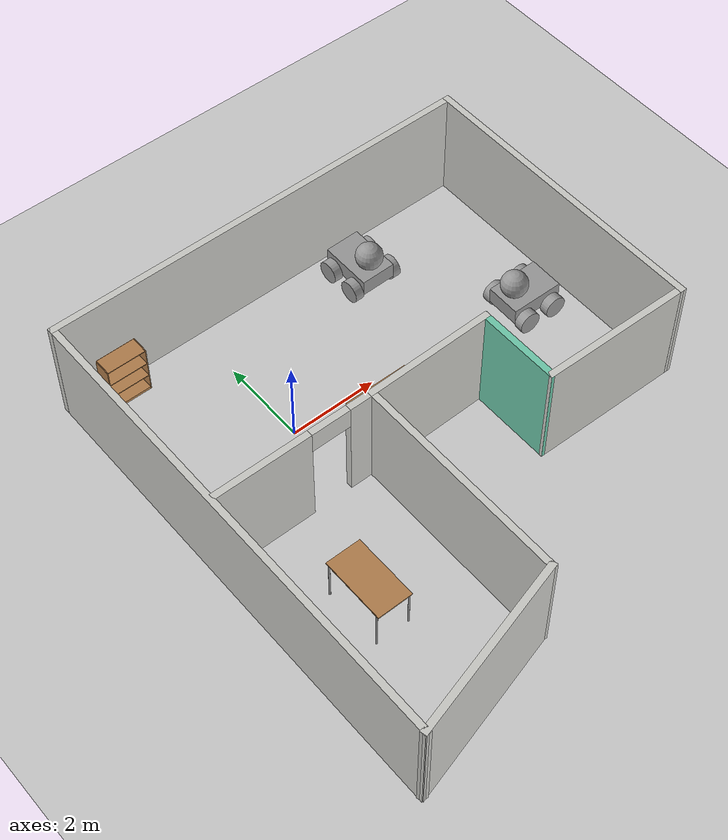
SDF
<sdf version="1.6">
 <world name="default">
  <plugin name="welcome" filename="../build/libwelcome.so"/>
  <light name="sun" type="directional">
   <pose>0 0 10 0 -0 0</pose>
   <diffuse>0.8 0.8 0.8 1</diffuse>
   <specular>0.2 0.2 0.2 1</specular>
   <attenuation>
    <range>1000</range>
    <constant>0.9</constant>
    <linear>0.01</linear>
    <quadratic>0.001</quadratic>
   </attenuation>
   <direction>-0.5 0.1 -0.9</direction>
  </light>
  <model name="ground_plane">
   <static>1</static>
   <link name="link">
    <collision name="collision">
     <geometry><plane><normal>0 0 1</normal><size>100 100</size></plane></geometry>
     <surface>
      <contact><collide_bitmask>65535</collide_bitmask></contact>
      <friction><ode><mu>100</mu><mu2>50</mu2></ode></friction>
     </surface>
    </collision>
    <visual name="visual">
     <cast_shadows>0</cast_shadows>
     <geometry><plane><normal>0 0 1</normal><size>100 100</size></plane></geometry>
     <material>
      <script><uri>file://media/materials/scripts/gazebo.material</uri><name>Gazebo/Grey</name></script>
     </material>
    </visual>
   </link>
  </model>
  <gravity>0 0 -9.8</gravity>
  <magnetic_field>6e-06 2.3e-05 -4.2e-05</magnetic_field>
  <atmosphere type="adiabatic"/>
  <physics name="default_physics" default="0" type="ode">
   <max_step_size>0.001</max_step_size>
   <real_time_factor>1</real_time_factor>
   <real_time_update_rate>1000</real_time_update_rate>
  </physics>
  <scene><ambient>0.4 0.4 0.4 1</ambient><background>0.7 0.7 0.7 1</background><shadows>1</shadows></scene>
  <audio><device>default</device></audio>
  <spherical_coordinates>
   <surface_model>EARTH_WGS84</surface_model>
   <latitude_deg>0</latitude_deg>
   <longitude_deg>0</longitude_deg>
   <elevation>0</elevation>
   <heading_deg>0</heading_deg>
  </spherical_coordinates>
  <model name="model">
   <pose>1.84998 -2.09742 0 0 -0 0</pose>
   <link name="Wall_1">
    <collision name="Wall_1_Collision">
     <geometry><box><size>11 0.15 2.5</size></box></geometry>
     <pose>0 0 1.25 0 -0 0</pose>
    </collision>
    <visual name="Wall_1_Visual">
     <pose>0 0 1.25 0 -0 0</pose>
     <geometry><box><size>11 0.15 2.5</size></box></geometry>
     <material>
      <script><uri>file://media/materials/scripts/gazebo.material</uri><name>Gazebo/CeilingTiled</name></script>
      <ambient>0.435294 0.796078 0.67451 1</ambient>
     </material>
     <meta><layer>0</layer></meta>
    </visual>
    <pose>-4.94886 0.008277 0 0 -0 -1.5708</pose>
   </link>
   <link name="Wall_11">
    <collision name="Wall_11_Collision">
     <geometry><box><size>7 0.15 2.5</size></box></geometry>
     <pose>0 0 1.25 0 -0 0</pose>
    </collision>
    <visual name="Wall_11_Visual">
     <pose>0 0 1.25 0 -0 0</pose>
     <geometry><box><size>7 0.15 2.5</size></box></geometry>
     <material>
      <script><uri>file://media/materials/scripts/gazebo.material</uri><name>Gazebo/CeilingTiled</name></script>
      <ambient>0.435294 0.796078 0.67451 1</ambient>
     </material>
     <meta><layer>0</layer></meta>
    </visual>
    <pose>4.96467 2.00864 0 0 -0 -1.5708</pose>
   </link>
   <link name="Wall_13">
    <collision name="Wall_13_Collision">
     <geometry><box><size>2 0.15 2.5</size></box></geometry>
     <pose>0 0 1.25 0 -0 0</pose>
    </collision>
    <visual name="Wall_13_Visual">
     <pose>0 0 1.25 0 -0 0</pose>
     <geometry><box><size>2 0.15 2.5</size></box></geometry>
     <material>
      <script><uri>file://media/materials/scripts/gazebo.material</uri><name>Gazebo/Grey</name></script>
      <ambient>0.435294 0.796078 0.67451 1</ambient>
     </material>
     <meta><layer>0</layer></meta>
    </visual>
    <pose>1.61467 -0.44136 0 0 -0 -1.5708</pose>
   </link>
   <link name="Wall_15">
    <collision name="Wall_15_Collision">
     <geometry><box><size>3.50037 0.15 2.5</size></box></geometry>
     <pose>0 0 1.25 0 -0 0</pose>
    </collision>
    <visual name="Wall_15_Visual">
     <pose>0 0 1.25 0 -0 0</pose>
     <geometry><box><size>3.50037 0.15 2.5</size></box></geometry>
     <material>
      <script><uri>file://media/materials/scripts/gazebo.material</uri><name>Gazebo/CeilingTiled</name></script>
      <ambient>0.435294 0.796078 0.67451 1</ambient>
     </material>
     <meta><layer>0</layer></meta>
    </visual>
    <pose>3.28967 -1.39136 0 0 -0 -0.014924</pose>
   </link>
   <link name="Wall_17">
    <pose>-3.03509 0.433277 0 0 -0 -3.14159</pose>
    <visual name="Wall_17_Visual_0">
     <pose>-1.55111 0 1.25 0 -0 0</pose>
     <geometry><box><size>0.647788 0.15 2.5</size></box></geometry>
     <material>
      <script><uri>file://media/materials/scripts/gazebo.material</uri><name>Gazebo/CeilingTiled</name></script>
      <ambient>0.435294 0.796078 0.67451 1</ambient>
     </material>
     <meta><layer>0</layer></meta>
    </visual>
    <collision name="Wall_17_Collision_0">
     <geometry><box><size>0.647788 0.15 2.5</size></box></geometry>
     <pose>-1.55111 0 1.25 0 -0 0</pose>
    </collision>
    <visual name="Wall_17_Visual_1">
     <pose>0.773894 0 1.25 0 -0 0</pose>
     <geometry><box><size>2.20221 0.15 2.5</size></box></geometry>
     <material>
      <script><uri>file://media/materials/scripts/gazebo.material</uri><name>Gazebo/CeilingTiled</name></script>
      <ambient>0.435294 0.796078 0.67451 1</ambient>
     </material>
     <meta><layer>0</layer></meta>
    </visual>
    <collision name="Wall_17_Collision_1">
     <geometry><box><size>2.20221 0.15 2.5</size></box></geometry>
     <pose>0.773894 0 1.25 0 -0 0</pose>
    </collision>
    <visual name="Wall_17_Visual_2">
     <pose>-0.777212 0 2.25 0 -0 0</pose>
     <geometry><box><size>0.9 0.15 0.5</size></box></geometry>
     <material>
      <script><uri>file://media/materials/scripts/gazebo.material</uri><name>Gazebo/CeilingTiled</name></script>
      <ambient>0.435294 0.796078 0.67451 1</ambient>
     </material>
     <meta><layer>0</layer></meta>
    </visual>
    <collision name="Wall_17_Collision_2">
     <geometry><box><size>0.9 0.15 0.5</size></box></geometry>
     <pose>-0.777212 0 2.25 0 -0 0</pose>
    </collision>
   </link>
   <link name="Wall_2">
    <collision name="Wall_2_Collision">
     <geometry><box><size>3.99627 0.15 2.5</size></box></geometry>
     <pose>0 0 1.25 0 -0 0</pose>
    </collision>
    <visual name="Wall_2_Visual">
     <pose>0 0 1.25 0 -0 0</pose>
     <geometry><box><size>3.99627 0.15 2.5</size></box></geometry>
     <material>
      <script><uri>file://media/materials/scripts/gazebo.material</uri><name>Gazebo/CeilingTiled</name></script>
      <ambient>0.435294 0.796078 0.67451 1</ambient>
     </material>
     <meta><layer>0</layer></meta>
    </visual>
    <pose>-3.09186 -4.91672 0 0 -0 0.263014</pose>
   </link>
   <link name="Wall_3">
    <collision name="Wall_3_Collision">
     <geometry><box><size>5 0.15 2.5</size></box></geometry>
     <pose>0 0 1.25 0 -0 0</pose>
    </collision>
    <visual name="Wall_3_Visual">
     <pose>0 0 1.25 0 -0 0</pose>
     <geometry><box><size>5 0.15 2.5</size></box></geometry>
     <material>
      <script><uri>file://media/materials/scripts/gazebo.material</uri><name>Gazebo/CeilingTiled</name></script>
      <ambient>0.435294 0.796078 0.67451 1</ambient>
     </material>
     <meta><layer>0</layer></meta>
    </visual>
    <pose>-1.23486 -1.99172 0 0 -0 1.5708</pose>
   </link>
   <link name="Wall_4">
    <collision name="Wall_4_Collision">
     <geometry><box><size>3.00044 0.15 2.5</size></box></geometry>
     <pose>0 0 1.25 0 -0 0</pose>
    </collision>
    <visual name="Wall_4_Visual">
     <pose>0 0 1.25 0 -0 0</pose>
     <geometry><box><size>3.00044 0.15 2.5</size></box></geometry>
     <material>
      <script><uri>file://media/materials/scripts/gazebo.material</uri><name>Gazebo/CeilingTiled</name></script>
      <ambient>0.435294 0.796078 0.67451 1</ambient>
     </material>
     <meta><layer>0</layer></meta>
    </visual>
    <pose>0.189905 0.458459 0 0 -0 0.017672</pose>
   </link>
   <link name="Wall_9">
    <collision name="Wall_9_Collision">
     <geometry><box><size>10.0635 0.15 2.5</size></box></geometry>
     <pose>0 0 1.25 0 -0 0</pose>
    </collision>
    <visual name="Wall_9_Visual">
     <pose>0 0 1.25 0 -0 0</pose>
     <geometry><box><size>10.0635 0.15 2.5</size></box></geometry>
     <material>
      <script><uri>file://media/materials/scripts/gazebo.material</uri><name>Gazebo/CeilingTiled</name></script>
      <ambient>0.435294 0.796078 0.67451 1</ambient>
     </material>
     <meta><layer>0</layer></meta>
    </visual>
    <pose>0.007905 5.43346 0 0 -0 3.7e-05</pose>
   </link>
   <link name="Window_0">
    <collision name="Window_0_Collision">
     <geometry><box><size>0.8 0.17 0.8</size></box></geometry>
     <pose>0 0 0.4 0 -0 0</pose>
    </collision>
    <visual name="Window_0_Visual">
     <pose>0 0 0.4 0 -0 0</pose>
     <geometry><box><size>0.8 0.17 0.8</size></box></geometry>
     <material>
      <script><uri>file://media/materials/scripts/gazebo.material</uri><name>Gazebo/Grey</name></script>
     </material>
    </visual>
    <pose>-4.01682 0.530032 0.5 0 -0 0</pose>
   </link>
   <static>1</static>
  </model>
  <model name="model_0">
   <link name="link_2">
    <inertial>
     <mass>1</mass>
     <inertia>
      <ixx>0.166667</ixx>
      <ixy>0</ixy>
      <ixz>0</ixz>
      <iyy>0.166667</iyy>
      <iyz>0</iyz>
      <izz>0.166667</izz>
     </inertia>
    </inertial>
    <pose>-0 0.05 0.011667 0 -0 0</pose>
    <visual name="visual">
     <geometry><box><size>0.8 1.2 0.38</size></box></geometry>
     <material>
      <lighting>1</lighting>
      <script><uri>file://media/materials/scripts/gazebo.material</uri><name>Gazebo/Grey</name></script>
      <shader type="pixel"><normal_map>__default__</normal_map></shader>
      <ambient>0.3 0.3 0.3 1</ambient>
      <diffuse>0.7 0.7 0.7 1</diffuse>
      <specular>0.01 0.01 0.01 1</specular>
      <emissive>0 0 0 1</emissive>
     </material>
    </visual>
    <collision name="collision">
     <geometry><box><size>0.8 1.2 0.38</size></box></geometry>
     <surface>
      <friction>
       <ode><mu>1</mu><mu2>1</mu2><fdir1>0 0 0</fdir1><slip1>0</slip1><slip2>0</slip2></ode>
       <torsional>
        <coefficient>1</coefficient>
        <patch_radius>0</patch_radius>
        <surface_radius>0</surface_radius>
        <use_patch_radius>1</use_patch_radius>
        <ode><slip>0</slip></ode>
       </torsional>
      </friction>
      <bounce><restitution_coefficient>0</restitution_coefficient><threshold>1e+06</threshold></bounce>
      <contact>
       <collide_without_contact>0</collide_without_contact>
       <collide_without_contact_bitmask>1</collide_without_contact_bitmask>
       <collide_bitmask>1</collide_bitmask>
       <ode>
        <soft_cfm>0</soft_cfm>
        <soft_erp>0.2</soft_erp>
        <kp>1e+13</kp>
        <kd>1</kd>
        <max_vel>0.01</max_vel>
        <min_depth>0</min_depth>
       </ode>
       <bullet>
        <split_impulse>1</split_impulse>
        <split_impulse_penetration_threshold>-0.01</split_impulse_penetration_threshold>
        <soft_cfm>0</soft_cfm>
        <soft_erp>0.2</soft_erp>
        <kp>1e+13</kp>
        <kd>1</kd>
       </bullet>
      </contact>
     </surface>
    </collision>
   </link>
   <link name="link_3">
    <inertial>
     <mass>1</mass>
     <inertia><ixx>0.145833</ixx><ixy>0</ixy><ixz>0</ixz><iyy>0.145833</iyy><iyz>0</iyz><izz>0.125</izz></inertia>
    </inertial>
    <pose>0.500048 -0.299987 -0.168333 1.5707 0 1.5707</pose>
    <visual name="visual">
     <geometry><cylinder><radius>0.25</radius><length>0.2</length></cylinder></geometry>
     <material>
      <lighting>1</lighting>
      <script><uri>file://media/materials/scripts/gazebo.material</uri><name>Gazebo/Grey</name></script>
      <shader type="pixel"><normal_map>__default__</normal_map></shader>
      <ambient>0.3 0.3 0.3 1</ambient>
      <diffuse>0.7 0.7 0.7 1</diffuse>
      <specular>0.01 0.01 0.01 1</specular>
      <emissive>0 0 0 1</emissive>
     </material>
    </visual>
    <collision name="collision">
     <geometry><cylinder><radius>0.25</radius><length>0.2</length></cylinder></geometry>
     <surface>
      <friction>
       <ode><mu>1</mu><mu2>1</mu2><fdir1>0 0 0</fdir1><slip1>0</slip1><slip2>0</slip2></ode>
       <torsional>
        <coefficient>1</coefficient>
        <patch_radius>0</patch_radius>
        <surface_radius>0</surface_radius>
        <use_patch_radius>1</use_patch_radius>
        <ode><slip>0</slip></ode>
       </torsional>
      </friction>
      <bounce><restitution_coefficient>0</restitution_coefficient><threshold>1e+06</threshold></bounce>
      <contact>
       <collide_without_contact>0</collide_without_contact>
       <collide_without_contact_bitmask>1</collide_without_contact_bitmask>
       <collide_bitmask>1</collide_bitmask>
       <ode>
        <soft_cfm>0</soft_cfm>
        <soft_erp>0.2</soft_erp>
        <kp>1e+13</kp>
        <kd>1</kd>
        <max_vel>0.01</max_vel>
        <min_depth>0</min_depth>
       </ode>
       <bullet>
        <split_impulse>1</split_impulse>
        <split_impulse_penetration_threshold>-0.01</split_impulse_penetration_threshold>
        <soft_cfm>0</soft_cfm>
        <soft_erp>0.2</soft_erp>
        <kp>1e+13</kp>
        <kd>1</kd>
       </bullet>
      </contact>
     </surface>
    </collision>
   </link>
   <link name="link_3_clone">
    <inertial>
     <mass>1</mass>
     <inertia><ixx>0.145833</ixx><ixy>0</ixy><ixz>0</ixz><iyy>0.145833</iyy><iyz>0</iyz><izz>0.125</izz></inertia>
    </inertial>
    <pose>0.500048 0.39999 -0.188333 1.5707 0 1.5707</pose>
    <visual name="visual">
     <geometry><cylinder><radius>0.25</radius><length>0.2</length></cylinder></geometry>
     <material>
      <lighting>1</lighting>
      <script><uri>file://media/materials/scripts/gazebo.material</uri><name>Gazebo/Grey</name></script>
      <shader type="pixel"><normal_map>__default__</normal_map></shader>
      <ambient>0.3 0.3 0.3 1</ambient>
      <diffuse>0.7 0.7 0.7 1</diffuse>
      <specular>0.01 0.01 0.01 1</specular>
      <emissive>0 0 0 1</emissive>
     </material>
    </visual>
    <collision name="collision">
     <geometry><cylinder><radius>0.25</radius><length>0.2</length></cylinder></geometry>
     <surface>
      <friction>
       <ode><mu>1</mu><mu2>1</mu2><fdir1>0 0 0</fdir1><slip1>0</slip1><slip2>0</slip2></ode>
       <torsional>
        <coefficient>1</coefficient>
        <patch_radius>0</patch_radius>
        <surface_radius>0</surface_radius>
        <use_patch_radius>1</use_patch_radius>
        <ode><slip>0</slip></ode>
       </torsional>
      </friction>
      <bounce><restitution_coefficient>0</restitution_coefficient><threshold>1e+06</threshold></bounce>
      <contact>
       <collide_without_contact>0</collide_without_contact>
       <collide_without_contact_bitmask>1</collide_without_contact_bitmask>
       <collide_bitmask>1</collide_bitmask>
       <ode>
        <soft_cfm>0</soft_cfm>
        <soft_erp>0.2</soft_erp>
        <kp>1e+13</kp>
        <kd>1</kd>
        <max_vel>0.01</max_vel>
        <min_depth>0</min_depth>
       </ode>
       <bullet>
        <split_impulse>1</split_impulse>
        <split_impulse_penetration_threshold>-0.01</split_impulse_penetration_threshold>
        <soft_cfm>0</soft_cfm>
        <soft_erp>0.2</soft_erp>
        <kp>1e+13</kp>
        <kd>1</kd>
       </bullet>
      </contact>
     </surface>
    </collision>
   </link>
   <link name="link_3_clone_0">
    <inertial>
     <mass>1</mass>
     <inertia><ixx>0.145833</ixx><ixy>0</ixy><ixz>0</ixz><iyy>0.145833</iyy><iyz>0</iyz><izz>0.125</izz></inertia>
    </inertial>
    <pose>-0.500048 -0.29999 -0.168333 1.5707 0 1.5707</pose>
    <visual name="visual">
     <geometry><cylinder><radius>0.25</radius><length>0.2</length></cylinder></geometry>
     <material>
      <lighting>1</lighting>
      <script><uri>file://media/materials/scripts/gazebo.material</uri><name>Gazebo/Grey</name></script>
      <shader type="pixel"><normal_map>__default__</normal_map></shader>
      <ambient>0.3 0.3 0.3 1</ambient>
      <diffuse>0.7 0.7 0.7 1</diffuse>
      <specular>0.01 0.01 0.01 1</specular>
      <emissive>0 0 0 1</emissive>
     </material>
    </visual>
    <collision name="collision">
     <geometry><cylinder><radius>0.25</radius><length>0.2</length></cylinder></geometry>
     <surface>
      <friction>
       <ode><mu>1</mu><mu2>1</mu2><fdir1>0 0 0</fdir1><slip1>0</slip1><slip2>0</slip2></ode>
       <torsional>
        <coefficient>1</coefficient>
        <patch_radius>0</patch_radius>
        <surface_radius>0</surface_radius>
        <use_patch_radius>1</use_patch_radius>
        <ode><slip>0</slip></ode>
       </torsional>
      </friction>
      <bounce><restitution_coefficient>0</restitution_coefficient><threshold>1e+06</threshold></bounce>
      <contact>
       <collide_without_contact>0</collide_without_contact>
       <collide_without_contact_bitmask>1</collide_without_contact_bitmask>
       <collide_bitmask>1</collide_bitmask>
       <ode>
        <soft_cfm>0</soft_cfm>
        <soft_erp>0.2</soft_erp>
        <kp>1e+13</kp>
        <kd>1</kd>
        <max_vel>0.01</max_vel>
        <min_depth>0</min_depth>
       </ode>
       <bullet>
        <split_impulse>1</split_impulse>
        <split_impulse_penetration_threshold>-0.01</split_impulse_penetration_threshold>
        <soft_cfm>0</soft_cfm>
        <soft_erp>0.2</soft_erp>
        <kp>1e+13</kp>
        <kd>1</kd>
       </bullet>
      </contact>
     </surface>
    </collision>
   </link>
   <link name="link_3_clone_1">
    <inertial>
     <mass>1</mass>
     <inertia><ixx>0.145833</ixx><ixy>0</ixy><ixz>0</ixz><iyy>0.145833</iyy><iyz>0</iyz><izz>0.125</izz></inertia>
    </inertial>
    <pose>-0.500049 0.39999 -0.168333 1.5707 0 1.5707</pose>
    <visual name="visual">
     <geometry><cylinder><radius>0.25</radius><length>0.2</length></cylinder></geometry>
     <material>
      <lighting>1</lighting>
      <script><uri>file://media/materials/scripts/gazebo.material</uri><name>Gazebo/Grey</name></script>
      <shader type="pixel"><normal_map>__default__</normal_map></shader>
      <ambient>0.3 0.3 0.3 1</ambient>
      <diffuse>0.7 0.7 0.7 1</diffuse>
      <specular>0.01 0.01 0.01 1</specular>
      <emissive>0 0 0 1</emissive>
     </material>
    </visual>
    <collision name="collision">
     <geometry><cylinder><radius>0.25</radius><length>0.2</length></cylinder></geometry>
     <surface>
      <friction>
       <ode><mu>1</mu><mu2>1</mu2><fdir1>0 0 0</fdir1><slip1>0</slip1><slip2>0</slip2></ode>
       <torsional>
        <coefficient>1</coefficient>
        <patch_radius>0</patch_radius>
        <surface_radius>0</surface_radius>
        <use_patch_radius>1</use_patch_radius>
        <ode><slip>0</slip></ode>
       </torsional>
      </friction>
      <bounce><restitution_coefficient>0</restitution_coefficient><threshold>1e+06</threshold></bounce>
      <contact>
       <collide_without_contact>0</collide_without_contact>
       <collide_without_contact_bitmask>1</collide_without_contact_bitmask>
       <collide_bitmask>1</collide_bitmask>
       <ode>
        <soft_cfm>0</soft_cfm>
        <soft_erp>0.2</soft_erp>
        <kp>1e+13</kp>
        <kd>1</kd>
        <max_vel>0.01</max_vel>
        <min_depth>0</min_depth>
       </ode>
       <bullet>
        <split_impulse>1</split_impulse>
        <split_impulse_penetration_threshold>-0.01</split_impulse_penetration_threshold>
        <soft_cfm>0</soft_cfm>
        <soft_erp>0.2</soft_erp>
        <kp>1e+13</kp>
        <kd>1</kd>
       </bullet>
      </contact>
     </surface>
    </collision>
   </link>
   <link name="link_5">
    <inertial>
     <mass>1</mass>
     <inertia><ixx>0.1</ixx><ixy>0</ixy><ixz>0</ixz><iyy>0.1</iyy><iyz>0</iyz><izz>0.1</izz></inertia>
    </inertial>
    <pose>-0 -0.25 0.501667 0 -0 0</pose>
    <visual name="visual">
     <geometry><sphere><radius>0.3</radius></sphere></geometry>
     <material>
      <lighting>1</lighting>
      <script><uri>file://media/materials/scripts/gazebo.material</uri><name>Gazebo/Grey</name></script>
      <shader type="pixel"><normal_map>__default__</normal_map></shader>
      <ambient>0.3 0.3 0.3 1</ambient>
      <diffuse>0.7 0.7 0.7 1</diffuse>
      <specular>0.01 0.01 0.01 1</specular>
      <emissive>0 0 0 1</emissive>
     </material>
    </visual>
    <collision name="collision">
     <geometry><sphere><radius>0.3</radius></sphere></geometry>
     <surface>
      <friction>
       <ode><mu>1</mu><mu2>1</mu2><fdir1>0 0 0</fdir1><slip1>0</slip1><slip2>0</slip2></ode>
       <torsional>
        <coefficient>1</coefficient>
        <patch_radius>0</patch_radius>
        <surface_radius>0</surface_radius>
        <use_patch_radius>1</use_patch_radius>
        <ode><slip>0</slip></ode>
       </torsional>
      </friction>
      <bounce><restitution_coefficient>0</restitution_coefficient><threshold>1e+06</threshold></bounce>
      <contact>
       <collide_without_contact>0</collide_without_contact>
       <collide_without_contact_bitmask>1</collide_without_contact_bitmask>
       <collide_bitmask>1</collide_bitmask>
       <ode>
        <soft_cfm>0</soft_cfm>
        <soft_erp>0.2</soft_erp>
        <kp>1e+13</kp>
        <kd>1</kd>
        <max_vel>0.01</max_vel>
        <min_depth>0</min_depth>
       </ode>
       <bullet>
        <split_impulse>1</split_impulse>
        <split_impulse_penetration_threshold>-0.01</split_impulse_penetration_threshold>
        <soft_cfm>0</soft_cfm>
        <soft_erp>0.2</soft_erp>
        <kp>1e+13</kp>
        <kd>1</kd>
       </bullet>
      </contact>
     </surface>
    </collision>
   </link>
   <joint name="link_2_JOINT_0" type="revolute">
    <parent>link_2</parent>
    <child>link_3</child>
    <pose>0 0 0 0.11 -0 0</pose>
    <axis>
     <xyz>1 0 0</xyz>
     <use_parent_model_frame>0</use_parent_model_frame>
     <limit>
      <lower>-1.79769e+308</lower>
      <upper>1.79769e+308</upper>
      <effort>-1</effort>
      <velocity>-1</velocity>
     </limit>
     <dynamics>
      <spring_reference>0</spring_reference>
      <spring_stiffness>0</spring_stiffness>
      <damping>0</damping>
     </dynamics>
    </axis>
    <physics>
     <ode><limit><cfm>0</cfm><erp>0.2</erp></limit><suspension><cfm>0</cfm><erp>0.2</erp></suspension></ode>
    </physics>
   </joint>
   <joint name="link_2_JOINT_1" type="revolute">
    <parent>link_2</parent>
    <child>link_3_clone</child>
    <axis>
     <xyz>1 0 0</xyz>
     <use_parent_model_frame>0</use_parent_model_frame>
     <limit>
      <lower>-1.79769e+308</lower>
      <upper>1.79769e+308</upper>
      <effort>-1</effort>
      <velocity>-1</velocity>
     </limit>
     <dynamics>
      <spring_reference>0</spring_reference>
      <spring_stiffness>0</spring_stiffness>
      <damping>0</damping>
     </dynamics>
    </axis>
    <physics>
     <ode><limit><cfm>0</cfm><erp>0.2</erp></limit><suspension><cfm>0</cfm><erp>0.2</erp></suspension></ode>
    </physics>
   </joint>
   <joint name="link_2_JOINT_2" type="revolute">
    <parent>link_2</parent>
    <child>link_3_clone_1</child>
    <axis>
     <xyz>1 0 0</xyz>
     <use_parent_model_frame>0</use_parent_model_frame>
     <limit>
      <lower>-1.79769e+308</lower>
      <upper>1.79769e+308</upper>
      <effort>-1</effort>
      <velocity>-1</velocity>
     </limit>
     <dynamics>
      <spring_reference>0</spring_reference>
      <spring_stiffness>0</spring_stiffness>
      <damping>0</damping>
     </dynamics>
    </axis>
    <physics>
     <ode><limit><cfm>0</cfm><erp>0.2</erp></limit><suspension><cfm>0</cfm><erp>0.2</erp></suspension></ode>
    </physics>
   </joint>
   <joint name="link_2_JOINT_3" type="revolute">
    <parent>link_2</parent>
    <child>link_3_clone_0</child>
    <axis>
     <xyz>1 0 0</xyz>
     <use_parent_model_frame>0</use_parent_model_frame>
     <limit>
      <lower>-1.79769e+308</lower>
      <upper>1.79769e+308</upper>
      <effort>-1</effort>
      <velocity>-1</velocity>
     </limit>
     <dynamics>
      <spring_reference>0</spring_reference>
      <spring_stiffness>0</spring_stiffness>
      <damping>0</damping>
     </dynamics>
    </axis>
    <physics>
     <ode><limit><cfm>0</cfm><erp>0.2</erp></limit><suspension><cfm>0</cfm><erp>0.2</erp></suspension></ode>
    </physics>
   </joint>
   <joint name="link_2_JOINT_4" type="revolute">
    <parent>link_2</parent>
    <child>link_5</child>
    <axis>
     <xyz>1 0 0</xyz>
     <use_parent_model_frame>0</use_parent_model_frame>
     <limit>
      <lower>-1.79769e+308</lower>
      <upper>1.79769e+308</upper>
      <effort>-1</effort>
      <velocity>-1</velocity>
     </limit>
     <dynamics>
      <spring_reference>0</spring_reference>
      <spring_stiffness>0</spring_stiffness>
      <damping>0</damping>
     </dynamics>
    </axis>
    <physics>
     <ode><limit><cfm>0</cfm><erp>0.2</erp></limit><suspension><cfm>0</cfm><erp>0.2</erp></suspension></ode>
    </physics>
   </joint>
   <static>0</static>
   <pose>3.62072 2.30674 0.427968 0.006794 -0.015241 0.002071</pose>
  </model>
  <model name="table">
   <static>1</static>
   <link name="link">
    <collision name="surface">
     <pose>0 0 1 0 -0 0</pose>
     <geometry><box><size>1.5 0.8 0.03</size></box></geometry>
     <surface><friction><ode><mu>0.6</mu><mu2>0.6</mu2></ode></friction></surface>
    </collision>
    <visual name="visual1">
     <pose>0 0 1 0 -0 0</pose>
     <geometry><box><size>1.5 0.8 0.03</size></box></geometry>
     <material>
      <script><uri>file://media/materials/scripts/gazebo.material</uri><name>Gazebo/Wood</name></script>
     </material>
    </visual>
    <collision name="front_left_leg">
     <pose>0.68 0.38 0.5 0 -0 0</pose>
     <geometry><cylinder><radius>0.02</radius><length>1</length></cylinder></geometry>
    </collision>
    <visual name="front_left_leg">
     <pose>0.68 0.38 0.5 0 -0 0</pose>
     <geometry><cylinder><radius>0.02</radius><length>1</length></cylinder></geometry>
     <material>
      <script><uri>file://media/materials/scripts/gazebo.material</uri><name>Gazebo/Grey</name></script>
     </material>
    </visual>
    <collision name="front_right_leg">
     <pose>0.68 -0.38 0.5 0 -0 0</pose>
     <geometry><cylinder><radius>0.02</radius><length>1</length></cylinder></geometry>
    </collision>
    <visual name="front_right_leg">
     <pose>0.68 -0.38 0.5 0 -0 0</pose>
     <geometry><cylinder><radius>0.02</radius><length>1</length></cylinder></geometry>
     <material>
      <script><uri>file://media/materials/scripts/gazebo.material</uri><name>Gazebo/Grey</name></script>
     </material>
    </visual>
    <collision name="back_right_leg">
     <pose>-0.68 -0.38 0.5 0 -0 0</pose>
     <geometry><cylinder><radius>0.02</radius><length>1</length></cylinder></geometry>
    </collision>
    <visual name="back_right_leg">
     <pose>-0.68 -0.38 0.5 0 -0 0</pose>
     <geometry><cylinder><radius>0.02</radius><length>1</length></cylinder></geometry>
     <material>
      <script><uri>file://media/materials/scripts/gazebo.material</uri><name>Gazebo/Grey</name></script>
     </material>
    </visual>
    <collision name="back_left_leg">
     <pose>-0.68 0.38 0.5 0 -0 0</pose>
     <geometry><cylinder><radius>0.02</radius><length>1</length></cylinder></geometry>
    </collision>
    <visual name="back_left_leg">
     <pose>-0.68 0.38 0.5 0 -0 0</pose>
     <geometry><cylinder><radius>0.02</radius><length>1</length></cylinder></geometry>
     <material>
      <script><uri>file://media/materials/scripts/gazebo.material</uri><name>Gazebo/Grey</name></script>
     </material>
    </visual>
   </link>
   <pose>-1.40245 -4.01658 0 0 -0 1.5707</pose>
  </model>
  <model name="bookshelf">
   <static>1</static>
   <link name="link">
    <inertial><mass>1</mass></inertial>
    <collision name="back">
     <pose>0 0.005 0.6 0 -0 0</pose>
     <geometry><box><size>0.9 0.01 1.2</size></box></geometry>
    </collision>
    <visual name="visual1">
     <pose>0 0.005 0.6 0 -0 0</pose>
     <geometry><box><size>0.9 0.01 1.2</size></box></geometry>
     <material>
      <script><uri>file://media/materials/scripts/gazebo.material</uri><name>Gazebo/Wood</name></script>
     </material>
    </visual>
    <collision name="left_side">
     <pose>0.45 -0.195 0.6 0 -0 0</pose>
     <geometry><box><size>0.02 0.4 1.2</size></box></geometry>
    </collision>
    <visual name="visual2">
     <pose>0.45 -0.195 0.6 0 -0 0</pose>
     <geometry><box><size>0.02 0.4 1.2</size></box></geometry>
     <material>
      <script><uri>file://media/materials/scripts/gazebo.material</uri><name>Gazebo/Wood</name></script>
     </material>
    </visual>
    <collision name="right_side">
     <pose>-0.45 -0.195 0.6 0 -0 0</pose>
     <geometry><box><size>0.02 0.4 1.2</size></box></geometry>
    </collision>
    <visual name="visual3">
     <pose>-0.45 -0.195 0.6 0 -0 0</pose>
     <geometry><box><size>0.02 0.4 1.2</size></box></geometry>
     <material>
      <script><uri>file://media/materials/scripts/gazebo.material</uri><name>Gazebo/Wood</name></script>
     </material>
    </visual>
    <collision name="bottom">
     <pose>0 -0.195 0.03 0 -0 0</pose>
     <geometry><box><size>0.88 0.4 0.06</size></box></geometry>
    </collision>
    <visual name="visual4">
     <pose>0 -0.195 0.03 0 -0 0</pose>
     <geometry><box><size>0.88 0.4 0.06</size></box></geometry>
     <material>
      <script><uri>file://media/materials/scripts/gazebo.material</uri><name>Gazebo/Wood</name></script>
     </material>
    </visual>
    <collision name="top">
     <pose>0 -0.195 1.19 0 -0 0</pose>
     <geometry><box><size>0.88 0.4 0.02</size></box></geometry>
    </collision>
    <visual name="visual5">
     <pose>0 -0.195 1.19 0 -0 0</pose>
     <geometry><box><size>0.88 0.4 0.02</size></box></geometry>
     <material>
      <script><uri>file://media/materials/scripts/gazebo.material</uri><name>Gazebo/Wood</name></script>
     </material>
    </visual>
    <collision name="low_shelf">
     <pose>0 -0.195 0.43 0 -0 0</pose>
     <geometry><box><size>0.88 0.4 0.02</size></box></geometry>
    </collision>
    <visual name="visual6">
     <pose>0 -0.195 0.43 0 -0 0</pose>
     <geometry><box><size>0.88 0.4 0.02</size></box></geometry>
     <material>
      <script><uri>file://media/materials/scripts/gazebo.material</uri><name>Gazebo/Wood</name></script>
     </material>
    </visual>
    <collision name="high_shelf">
     <pose>0 -0.195 0.8 0 -0 0</pose>
     <geometry><box><size>0.88 0.4 0.02</size></box></geometry>
    </collision>
    <visual name="visual7">
     <pose>0 -0.195 0.8 0 -0 0</pose>
     <geometry><box><size>0.88 0.4 0.02</size></box></geometry>
     <material>
      <script><uri>file://media/materials/scripts/gazebo.material</uri><name>Gazebo/Wood</name></script>
     </material>
    </visual>
   </link>
   <pose>-1.98628 3.13072 0 0 -0 0</pose>
  </model>
  <model name="model_0_clone">
   <link name="link_2">
    <inertial>
     <mass>1</mass>
     <inertia>
      <ixx>0.166667</ixx>
      <ixy>0</ixy>
      <ixz>0</ixz>
      <iyy>0.166667</iyy>
      <iyz>0</iyz>
      <izz>0.166667</izz>
     </inertia>
    </inertial>
    <pose>-0 0.05 0.011667 0 -0 0</pose>
    <visual name="visual">
     <geometry><box><size>0.8 1.2 0.38</size></box></geometry>
     <material>
      <lighting>1</lighting>
      <script><uri>file://media/materials/scripts/gazebo.material</uri><name>Gazebo/Grey</name></script>
      <shader type="pixel"><normal_map>__default__</normal_map></shader>
      <ambient>0.3 0.3 0.3 1</ambient>
      <diffuse>0.7 0.7 0.7 1</diffuse>
      <specular>0.01 0.01 0.01 1</specular>
      <emissive>0 0 0 1</emissive>
     </material>
    </visual>
    <collision name="collision">
     <geometry><box><size>0.8 1.2 0.38</size></box></geometry>
     <surface>
      <friction>
       <ode><mu>1</mu><mu2>1</mu2><fdir1>0 0 0</fdir1><slip1>0</slip1><slip2>0</slip2></ode>
       <torsional>
        <coefficient>1</coefficient>
        <patch_radius>0</patch_radius>
        <surface_radius>0</surface_radius>
        <use_patch_radius>1</use_patch_radius>
        <ode><slip>0</slip></ode>
       </torsional>
      </friction>
      <bounce><restitution_coefficient>0</restitution_coefficient><threshold>1e+06</threshold></bounce>
      <contact>
       <collide_without_contact>0</collide_without_contact>
       <collide_without_contact_bitmask>1</collide_without_contact_bitmask>
       <collide_bitmask>1</collide_bitmask>
       <ode>
        <soft_cfm>0</soft_cfm>
        <soft_erp>0.2</soft_erp>
        <kp>1e+13</kp>
        <kd>1</kd>
        <max_vel>0.01</max_vel>
        <min_depth>0</min_depth>
       </ode>
       <bullet>
        <split_impulse>1</split_impulse>
        <split_impulse_penetration_threshold>-0.01</split_impulse_penetration_threshold>
        <soft_cfm>0</soft_cfm>
        <soft_erp>0.2</soft_erp>
        <kp>1e+13</kp>
        <kd>1</kd>
       </bullet>
      </contact>
     </surface>
    </collision>
   </link>
   <link name="link_3">
    <inertial>
     <mass>1</mass>
     <inertia><ixx>0.145833</ixx><ixy>0</ixy><ixz>0</ixz><iyy>0.145833</iyy><iyz>0</iyz><izz>0.125</izz></inertia>
    </inertial>
    <pose>0.500048 -0.299987 -0.168333 1.5707 0 1.5707</pose>
    <visual name="visual">
     <geometry><cylinder><radius>0.25</radius><length>0.2</length></cylinder></geometry>
     <material>
      <lighting>1</lighting>
      <script><uri>file://media/materials/scripts/gazebo.material</uri><name>Gazebo/Grey</name></script>
      <shader type="pixel"><normal_map>__default__</normal_map></shader>
      <ambient>0.3 0.3 0.3 1</ambient>
      <diffuse>0.7 0.7 0.7 1</diffuse>
      <specular>0.01 0.01 0.01 1</specular>
      <emissive>0 0 0 1</emissive>
     </material>
    </visual>
    <collision name="collision">
     <geometry><cylinder><radius>0.25</radius><length>0.2</length></cylinder></geometry>
     <surface>
      <friction>
       <ode><mu>1</mu><mu2>1</mu2><fdir1>0 0 0</fdir1><slip1>0</slip1><slip2>0</slip2></ode>
       <torsional>
        <coefficient>1</coefficient>
        <patch_radius>0</patch_radius>
        <surface_radius>0</surface_radius>
        <use_patch_radius>1</use_patch_radius>
        <ode><slip>0</slip></ode>
       </torsional>
      </friction>
      <bounce><restitution_coefficient>0</restitution_coefficient><threshold>1e+06</threshold></bounce>
      <contact>
       <collide_without_contact>0</collide_without_contact>
       <collide_without_contact_bitmask>1</collide_without_contact_bitmask>
       <collide_bitmask>1</collide_bitmask>
       <ode>
        <soft_cfm>0</soft_cfm>
        <soft_erp>0.2</soft_erp>
        <kp>1e+13</kp>
        <kd>1</kd>
        <max_vel>0.01</max_vel>
        <min_depth>0</min_depth>
       </ode>
       <bullet>
        <split_impulse>1</split_impulse>
        <split_impulse_penetration_threshold>-0.01</split_impulse_penetration_threshold>
        <soft_cfm>0</soft_cfm>
        <soft_erp>0.2</soft_erp>
        <kp>1e+13</kp>
        <kd>1</kd>
       </bullet>
      </contact>
     </surface>
    </collision>
   </link>
   <link name="link_3_clone">
    <inertial>
     <mass>1</mass>
     <inertia><ixx>0.145833</ixx><ixy>0</ixy><ixz>0</ixz><iyy>0.145833</iyy><iyz>0</iyz><izz>0.125</izz></inertia>
    </inertial>
    <pose>0.500048 0.39999 -0.188333 1.5707 0 1.5707</pose>
    <visual name="visual">
     <geometry><cylinder><radius>0.25</radius><length>0.2</length></cylinder></geometry>
     <material>
      <lighting>1</lighting>
      <script><uri>file://media/materials/scripts/gazebo.material</uri><name>Gazebo/Grey</name></script>
      <shader type="pixel"><normal_map>__default__</normal_map></shader>
      <ambient>0.3 0.3 0.3 1</ambient>
      <diffuse>0.7 0.7 0.7 1</diffuse>
      <specular>0.01 0.01 0.01 1</specular>
      <emissive>0 0 0 1</emissive>
     </material>
    </visual>
    <collision name="collision">
     <geometry><cylinder><radius>0.25</radius><length>0.2</length></cylinder></geometry>
     <surface>
      <friction>
       <ode><mu>1</mu><mu2>1</mu2><fdir1>0 0 0</fdir1><slip1>0</slip1><slip2>0</slip2></ode>
       <torsional>
        <coefficient>1</coefficient>
        <patch_radius>0</patch_radius>
        <surface_radius>0</surface_radius>
        <use_patch_radius>1</use_patch_radius>
        <ode><slip>0</slip></ode>
       </torsional>
      </friction>
      <bounce><restitution_coefficient>0</restitution_coefficient><threshold>1e+06</threshold></bounce>
      <contact>
       <collide_without_contact>0</collide_without_contact>
       <collide_without_contact_bitmask>1</collide_without_contact_bitmask>
       <collide_bitmask>1</collide_bitmask>
       <ode>
        <soft_cfm>0</soft_cfm>
        <soft_erp>0.2</soft_erp>
        <kp>1e+13</kp>
        <kd>1</kd>
        <max_vel>0.01</max_vel>
        <min_depth>0</min_depth>
       </ode>
       <bullet>
        <split_impulse>1</split_impulse>
        <split_impulse_penetration_threshold>-0.01</split_impulse_penetration_threshold>
        <soft_cfm>0</soft_cfm>
        <soft_erp>0.2</soft_erp>
        <kp>1e+13</kp>
        <kd>1</kd>
       </bullet>
      </contact>
     </surface>
    </collision>
   </link>
   <link name="link_3_clone_0">
    <inertial>
     <mass>1</mass>
     <inertia><ixx>0.145833</ixx><ixy>0</ixy><ixz>0</ixz><iyy>0.145833</iyy><iyz>0</iyz><izz>0.125</izz></inertia>
    </inertial>
    <pose>-0.500048 -0.29999 -0.168333 1.5707 0 1.5707</pose>
    <visual name="visual">
     <geometry><cylinder><radius>0.25</radius><length>0.2</length></cylinder></geometry>
     <material>
      <lighting>1</lighting>
      <script><uri>file://media/materials/scripts/gazebo.material</uri><name>Gazebo/Grey</name></script>
      <shader type="pixel"><normal_map>__default__</normal_map></shader>
      <ambient>0.3 0.3 0.3 1</ambient>
      <diffuse>0.7 0.7 0.7 1</diffuse>
      <specular>0.01 0.01 0.01 1</specular>
      <emissive>0 0 0 1</emissive>
     </material>
    </visual>
    <collision name="collision">
     <geometry><cylinder><radius>0.25</radius><length>0.2</length></cylinder></geometry>
     <surface>
      <friction>
       <ode><mu>1</mu><mu2>1</mu2><fdir1>0 0 0</fdir1><slip1>0</slip1><slip2>0</slip2></ode>
       <torsional>
        <coefficient>1</coefficient>
        <patch_radius>0</patch_radius>
        <surface_radius>0</surface_radius>
        <use_patch_radius>1</use_patch_radius>
        <ode><slip>0</slip></ode>
       </torsional>
      </friction>
      <bounce><restitution_coefficient>0</restitution_coefficient><threshold>1e+06</threshold></bounce>
      <contact>
       <collide_without_contact>0</collide_without_contact>
       <collide_without_contact_bitmask>1</collide_without_contact_bitmask>
       <collide_bitmask>1</collide_bitmask>
       <ode>
        <soft_cfm>0</soft_cfm>
        <soft_erp>0.2</soft_erp>
        <kp>1e+13</kp>
        <kd>1</kd>
        <max_vel>0.01</max_vel>
        <min_depth>0</min_depth>
       </ode>
       <bullet>
        <split_impulse>1</split_impulse>
        <split_impulse_penetration_threshold>-0.01</split_impulse_penetration_threshold>
        <soft_cfm>0</soft_cfm>
        <soft_erp>0.2</soft_erp>
        <kp>1e+13</kp>
        <kd>1</kd>
       </bullet>
      </contact>
     </surface>
    </collision>
   </link>
   <link name="link_3_clone_1">
    <inertial>
     <mass>1</mass>
     <inertia><ixx>0.145833</ixx><ixy>0</ixy><ixz>0</ixz><iyy>0.145833</iyy><iyz>0</iyz><izz>0.125</izz></inertia>
    </inertial>
    <pose>-0.500049 0.39999 -0.168333 1.5707 0 1.5707</pose>
    <visual name="visual">
     <geometry><cylinder><radius>0.25</radius><length>0.2</length></cylinder></geometry>
     <material>
      <lighting>1</lighting>
      <script><uri>file://media/materials/scripts/gazebo.material</uri><name>Gazebo/Grey</name></script>
      <shader type="pixel"><normal_map>__default__</normal_map></shader>
      <ambient>0.3 0.3 0.3 1</ambient>
      <diffuse>0.7 0.7 0.7 1</diffuse>
      <specular>0.01 0.01 0.01 1</specular>
      <emissive>0 0 0 1</emissive>
     </material>
    </visual>
    <collision name="collision">
     <geometry><cylinder><radius>0.25</radius><length>0.2</length></cylinder></geometry>
     <surface>
      <friction>
       <ode><mu>1</mu><mu2>1</mu2><fdir1>0 0 0</fdir1><slip1>0</slip1><slip2>0</slip2></ode>
       <torsional>
        <coefficient>1</coefficient>
        <patch_radius>0</patch_radius>
        <surface_radius>0</surface_radius>
        <use_patch_radius>1</use_patch_radius>
        <ode><slip>0</slip></ode>
       </torsional>
      </friction>
      <bounce><restitution_coefficient>0</restitution_coefficient><threshold>1e+06</threshold></bounce>
      <contact>
       <collide_without_contact>0</collide_without_contact>
       <collide_without_contact_bitmask>1</collide_without_contact_bitmask>
       <collide_bitmask>1</collide_bitmask>
       <ode>
        <soft_cfm>0</soft_cfm>
        <soft_erp>0.2</soft_erp>
        <kp>1e+13</kp>
        <kd>1</kd>
        <max_vel>0.01</max_vel>
        <min_depth>0</min_depth>
       </ode>
       <bullet>
        <split_impulse>1</split_impulse>
        <split_impulse_penetration_threshold>-0.01</split_impulse_penetration_threshold>
        <soft_cfm>0</soft_cfm>
        <soft_erp>0.2</soft_erp>
        <kp>1e+13</kp>
        <kd>1</kd>
       </bullet>
      </contact>
     </surface>
    </collision>
   </link>
   <link name="link_5">
    <inertial>
     <mass>1</mass>
     <inertia><ixx>0.1</ixx><ixy>0</ixy><ixz>0</ixz><iyy>0.1</iyy><iyz>0</iyz><izz>0.1</izz></inertia>
    </inertial>
    <pose>-0 -0.25 0.501667 0 -0 0</pose>
    <visual name="visual">
     <geometry><sphere><radius>0.3</radius></sphere></geometry>
     <material>
      <lighting>1</lighting>
      <script><uri>file://media/materials/scripts/gazebo.material</uri><name>Gazebo/Grey</name></script>
      <shader type="pixel"><normal_map>__default__</normal_map></shader>
      <ambient>0.3 0.3 0.3 1</ambient>
      <diffuse>0.7 0.7 0.7 1</diffuse>
      <specular>0.01 0.01 0.01 1</specular>
      <emissive>0 0 0 1</emissive>
     </material>
    </visual>
    <collision name="collision">
     <geometry><sphere><radius>0.3</radius></sphere></geometry>
     <surface>
      <friction>
       <ode><mu>1</mu><mu2>1</mu2><fdir1>0 0 0</fdir1><slip1>0</slip1><slip2>0</slip2></ode>
       <torsional>
        <coefficient>1</coefficient>
        <patch_radius>0</patch_radius>
        <surface_radius>0</surface_radius>
        <use_patch_radius>1</use_patch_radius>
        <ode><slip>0</slip></ode>
       </torsional>
      </friction>
      <bounce><restitution_coefficient>0</restitution_coefficient><threshold>1e+06</threshold></bounce>
      <contact>
       <collide_without_contact>0</collide_without_contact>
       <collide_without_contact_bitmask>1</collide_without_contact_bitmask>
       <collide_bitmask>1</collide_bitmask>
       <ode>
        <soft_cfm>0</soft_cfm>
        <soft_erp>0.2</soft_erp>
        <kp>1e+13</kp>
        <kd>1</kd>
        <max_vel>0.01</max_vel>
        <min_depth>0</min_depth>
       </ode>
       <bullet>
        <split_impulse>1</split_impulse>
        <split_impulse_penetration_threshold>-0.01</split_impulse_penetration_threshold>
        <soft_cfm>0</soft_cfm>
        <soft_erp>0.2</soft_erp>
        <kp>1e+13</kp>
        <kd>1</kd>
       </bullet>
      </contact>
     </surface>
    </collision>
   </link>
   <joint name="link_2_JOINT_0" type="revolute">
    <parent>link_2</parent>
    <child>link_3</child>
    <pose>0 0 0 0.11 -0 0</pose>
    <axis>
     <xyz>1 0 0</xyz>
     <use_parent_model_frame>0</use_parent_model_frame>
     <limit>
      <lower>-1.79769e+308</lower>
      <upper>1.79769e+308</upper>
      <effort>-1</effort>
      <velocity>-1</velocity>
     </limit>
     <dynamics>
      <spring_reference>0</spring_reference>
      <spring_stiffness>0</spring_stiffness>
      <damping>0</damping>
     </dynamics>
    </axis>
    <physics>
     <ode><limit><cfm>0</cfm><erp>0.2</erp></limit><suspension><cfm>0</cfm><erp>0.2</erp></suspension></ode>
    </physics>
   </joint>
   <joint name="link_2_JOINT_1" type="revolute">
    <parent>link_2</parent>
    <child>link_3_clone</child>
    <axis>
     <xyz>1 0 0</xyz>
     <use_parent_model_frame>0</use_parent_model_frame>
     <limit>
      <lower>-1.79769e+308</lower>
      <upper>1.79769e+308</upper>
      <effort>-1</effort>
      <velocity>-1</velocity>
     </limit>
     <dynamics>
      <spring_reference>0</spring_reference>
      <spring_stiffness>0</spring_stiffness>
      <damping>0</damping>
     </dynamics>
    </axis>
    <physics>
     <ode><limit><cfm>0</cfm><erp>0.2</erp></limit><suspension><cfm>0</cfm><erp>0.2</erp></suspension></ode>
    </physics>
   </joint>
   <joint name="link_2_JOINT_2" type="revolute">
    <parent>link_2</parent>
    <child>link_3_clone_1</child>
    <axis>
     <xyz>1 0 0</xyz>
     <use_parent_model_frame>0</use_parent_model_frame>
     <limit>
      <lower>-1.79769e+308</lower>
      <upper>1.79769e+308</upper>
      <effort>-1</effort>
      <velocity>-1</velocity>
     </limit>
     <dynamics>
      <spring_reference>0</spring_reference>
      <spring_stiffness>0</spring_stiffness>
      <damping>0</damping>
     </dynamics>
    </axis>
    <physics>
     <ode><limit><cfm>0</cfm><erp>0.2</erp></limit><suspension><cfm>0</cfm><erp>0.2</erp></suspension></ode>
    </physics>
   </joint>
   <joint name="link_2_JOINT_3" type="revolute">
    <parent>link_2</parent>
    <child>link_3_clone_0</child>
    <axis>
     <xyz>1 0 0</xyz>
     <use_parent_model_frame>0</use_parent_model_frame>
     <limit>
      <lower>-1.79769e+308</lower>
      <upper>1.79769e+308</upper>
      <effort>-1</effort>
      <velocity>-1</velocity>
     </limit>
     <dynamics>
      <spring_reference>0</spring_reference>
      <spring_stiffness>0</spring_stiffness>
      <damping>0</damping>
     </dynamics>
    </axis>
    <physics>
     <ode><limit><cfm>0</cfm><erp>0.2</erp></limit><suspension><cfm>0</cfm><erp>0.2</erp></suspension></ode>
    </physics>
   </joint>
   <joint name="link_2_JOINT_4" type="revolute">
    <parent>link_2</parent>
    <child>link_5</child>
    <axis>
     <xyz>1 0 0</xyz>
     <use_parent_model_frame>0</use_parent_model_frame>
     <limit>
      <lower>-1.79769e+308</lower>
      <upper>1.79769e+308</upper>
      <effort>-1</effort>
      <velocity>-1</velocity>
     </limit>
     <dynamics>
      <spring_reference>0</spring_reference>
      <spring_stiffness>0</spring_stiffness>
      <damping>0</damping>
     </dynamics>
    </axis>
    <physics>
     <ode><limit><cfm>0</cfm><erp>0.2</erp></limit><suspension><cfm>0</cfm><erp>0.2</erp></suspension></ode>
    </physics>
   </joint>
   <static>0</static>
   <pose>5.67848 -0.443203 0.427484 0.016317 -0.008569 -1.59022</pose>
  </model>
  <model name="table_0">
   <static>1</static>
   <link name="link">
    <collision name="surface">
     <pose>0 0 1 0 -0 0</pose>
     <geometry><box><size>1.5 0.8 0.03</size></box></geometry>
     <surface><friction><ode><mu>0.6</mu><mu2>0.6</mu2></ode></friction></surface>
    </collision>
    <visual name="visual1">
     <pose>0 0 1 0 -0 0</pose>
     <geometry><box><size>1.5 0.8 0.03</size></box></geometry>
     <material>
      <script><uri>file://media/materials/scripts/gazebo.material</uri><name>Gazebo/Wood</name></script>
     </material>
    </visual>
    <collision name="front_left_leg">
     <pose>0.68 0.38 0.5 0 -0 0</pose>
     <geometry><cylinder><radius>0.02</radius><length>1</length></cylinder></geometry>
    </collision>
    <visual name="front_left_leg">
     <pose>0.68 0.38 0.5 0 -0 0</pose>
     <geometry><cylinder><radius>0.02</radius><length>1</length></cylinder></geometry>
     <material>
      <script><uri>file://media/materials/scripts/gazebo.material</uri><name>Gazebo/Grey</name></script>
     </material>
    </visual>
    <collision name="front_right_leg">
     <pose>0.68 -0.38 0.5 0 -0 0</pose>
     <geometry><cylinder><radius>0.02</radius><length>1</length></cylinder></geometry>
    </collision>
    <visual name="front_right_leg">
     <pose>0.68 -0.38 0.5 0 -0 0</pose>
     <geometry><cylinder><radius>0.02</radius><length>1</length></cylinder></geometry>
     <material>
      <script><uri>file://media/materials/scripts/gazebo.material</uri><name>Gazebo/Grey</name></script>
     </material>
    </visual>
    <collision name="back_right_leg">
     <pose>-0.68 -0.38 0.5 0 -0 0</pose>
     <geometry><cylinder><radius>0.02</radius><length>1</length></cylinder></geometry>
    </collision>
    <visual name="back_right_leg">
     <pose>-0.68 -0.38 0.5 0 -0 0</pose>
     <geometry><cylinder><radius>0.02</radius><length>1</length></cylinder></geometry>
     <material>
      <script><uri>file://media/materials/scripts/gazebo.material</uri><name>Gazebo/Grey</name></script>
     </material>
    </visual>
    <collision name="back_left_leg">
     <pose>-0.68 0.38 0.5 0 -0 0</pose>
     <geometry><cylinder><radius>0.02</radius><length>1</length></cylinder></geometry>
    </collision>
    <visual name="back_left_leg">
     <pose>-0.68 0.38 0.5 0 -0 0</pose>
     <geometry><cylinder><radius>0.02</radius><length>1</length></cylinder></geometry>
     <material>
      <script><uri>file://media/materials/scripts/gazebo.material</uri><name>Gazebo/Grey</name></script>
     </material>
    </visual>
   </link>
   <pose>1.52667 -1.07474 0 0 -0 0</pose>
  </model>
 </world>
</sdf>
